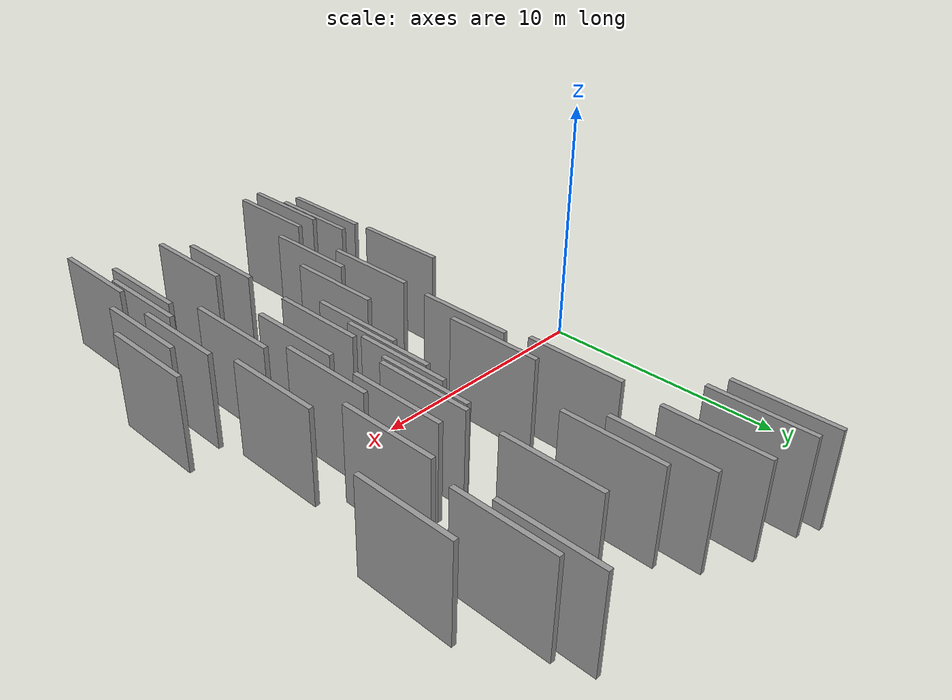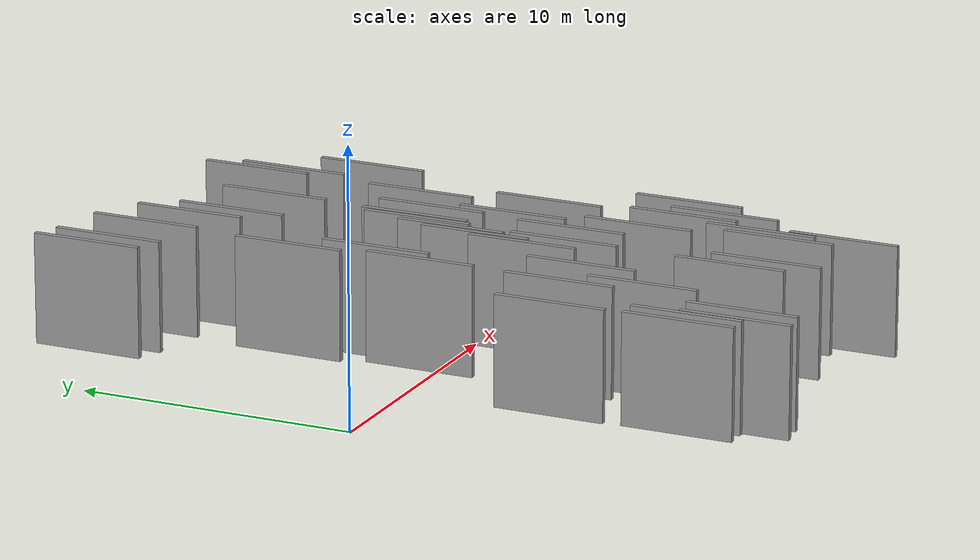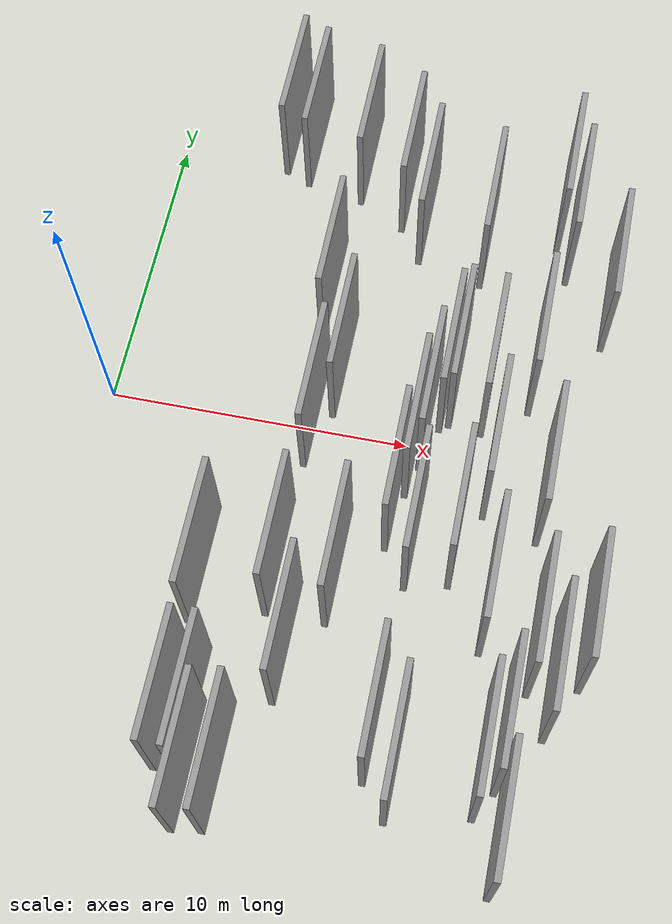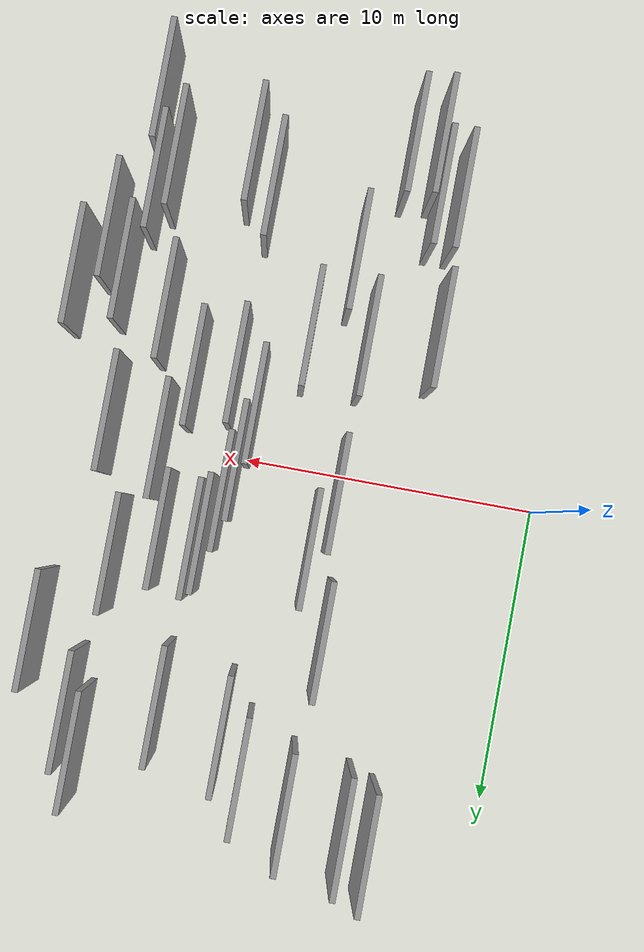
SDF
<sdf version="1.6">
 <world name="default">
  <scene>
   <sky><clouds><speed>12</speed></clouds></sky>
   <ambient>0.4 0.4 0.4 1</ambient>
   <background>0.7 0.7 0.7 1</background>
   <shadows>1</shadows>
  </scene>
  <gravity>0 0 -9.8066</gravity>
  <magnetic_field>6e-06 2.3e-05 -4.2e-05</magnetic_field>
  <physics default="0" name="default_physics" type="ode">
   <ode>
    <solver>
     <type>quick</type>
     <iters>10</iters>
     <sor>1.0</sor>
     <use_dynamic_moi_rescaling>0</use_dynamic_moi_rescaling>
    </solver>
    <constraints>
     <cfm>0</cfm>
     <erp>0.2</erp>
     <contact_max_correcting_vel>100</contact_max_correcting_vel>
     <contact_surface_layer>0.001</contact_surface_layer>
    </constraints>
   </ode>
   <max_step_size>0.004</max_step_size>
   <real_time_factor>1</real_time_factor>
   <real_time_update_rate>250</real_time_update_rate>
  </physics>
  <light name="sun" type="directional">
   <pose>0 0 10 0 0 0</pose>
   <diffuse>0.8 0.8 0.8 1</diffuse>
   <specular>0.2 0.2 0.2 1</specular>
   <attenuation>
    <range>1000</range>
    <constant>0.9</constant>
    <linear>0.01</linear>
    <quadratic>0.001</quadratic>
   </attenuation>
   <direction>-0.5 0.1 -0.9</direction>
  </light>
  <model name="grey_wall_1">
   <static>1</static>
   <pose>6.8083 0.6478 0.0 0.000000 0.000000 1.570796</pose>
   <link name="link">
    <pose>0 0 2.00 0 0 0</pose>
    <collision name="collision"><geometry><box><size>4.00 0.2 4.00</size></box></geometry></collision>
    <visual name="visual">
     <cast_shadows>0</cast_shadows>
     <geometry><box><size>4.00 0.2 4.00</size></box></geometry>
     <material>
      <script>
       <uri>model://grey_wall/materials/scripts</uri>
       <uri>model://grey_wall/materials/textures</uri>
       <name>vrc/grey_wall</name>
      </script>
     </material>
    </visual>
   </link>
  </model>
  <model name="grey_wall_2">
   <static>1</static>
   <pose>15.7567 -6.8476 0.0 0.000000 0.000000 1.570796</pose>
   <link name="link">
    <pose>0 0 2.00 0 0 0</pose>
    <collision name="collision"><geometry><box><size>4.00 0.2 4.00</size></box></geometry></collision>
    <visual name="visual">
     <cast_shadows>0</cast_shadows>
     <geometry><box><size>4.00 0.2 4.00</size></box></geometry>
     <material>
      <script>
       <uri>model://grey_wall/materials/scripts</uri>
       <uri>model://grey_wall/materials/textures</uri>
       <name>vrc/grey_wall</name>
      </script>
     </material>
    </visual>
   </link>
  </model>
  <model name="grey_wall_3">
   <static>1</static>
   <pose>14.5750 -8.6801 0.0 0.000000 0.000000 1.570796</pose>
   <link name="link">
    <pose>0 0 2.00 0 0 0</pose>
    <collision name="collision"><geometry><box><size>4.00 0.2 4.00</size></box></geometry></collision>
    <visual name="visual">
     <cast_shadows>0</cast_shadows>
     <geometry><box><size>4.00 0.2 4.00</size></box></geometry>
     <material>
      <script>
       <uri>model://grey_wall/materials/scripts</uri>
       <uri>model://grey_wall/materials/textures</uri>
       <name>vrc/grey_wall</name>
      </script>
     </material>
    </visual>
   </link>
  </model>
  <model name="grey_wall_4">
   <static>1</static>
   <pose>9.1285 9.0068 0.0 0.000000 0.000000 1.570796</pose>
   <link name="link">
    <pose>0 0 2.00 0 0 0</pose>
    <collision name="collision"><geometry><box><size>4.00 0.2 4.00</size></box></geometry></collision>
    <visual name="visual">
     <cast_shadows>0</cast_shadows>
     <geometry><box><size>4.00 0.2 4.00</size></box></geometry>
     <material>
      <script>
       <uri>model://grey_wall/materials/scripts</uri>
       <uri>model://grey_wall/materials/textures</uri>
       <name>vrc/grey_wall</name>
      </script>
     </material>
    </visual>
   </link>
  </model>
  <model name="grey_wall_5">
   <static>1</static>
   <pose>12.8604 -0.0715 0.0 0.000000 0.000000 1.570796</pose>
   <link name="link">
    <pose>0 0 2.00 0 0 0</pose>
    <collision name="collision"><geometry><box><size>4.00 0.2 4.00</size></box></geometry></collision>
    <visual name="visual">
     <cast_shadows>0</cast_shadows>
     <geometry><box><size>4.00 0.2 4.00</size></box></geometry>
     <material>
      <script>
       <uri>model://grey_wall/materials/scripts</uri>
       <uri>model://grey_wall/materials/textures</uri>
       <name>vrc/grey_wall</name>
      </script>
     </material>
    </visual>
   </link>
  </model>
  <model name="grey_wall_6">
   <static>1</static>
   <pose>11.5344 -10.1321 0.0 0.000000 0.000000 1.570796</pose>
   <link name="link">
    <pose>0 0 2.00 0 0 0</pose>
    <collision name="collision"><geometry><box><size>4.00 0.2 4.00</size></box></geometry></collision>
    <visual name="visual">
     <cast_shadows>0</cast_shadows>
     <geometry><box><size>4.00 0.2 4.00</size></box></geometry>
     <material>
      <script>
       <uri>model://grey_wall/materials/scripts</uri>
       <uri>model://grey_wall/materials/textures</uri>
       <name>vrc/grey_wall</name>
      </script>
     </material>
    </visual>
   </link>
  </model>
  <model name="grey_wall_7">
   <static>1</static>
   <pose>6.3801 -11.3812 0.0 0.000000 0.000000 1.570796</pose>
   <link name="link">
    <pose>0 0 2.00 0 0 0</pose>
    <collision name="collision"><geometry><box><size>4.00 0.2 4.00</size></box></geometry></collision>
    <visual name="visual">
     <cast_shadows>0</cast_shadows>
     <geometry><box><size>4.00 0.2 4.00</size></box></geometry>
     <material>
      <script>
       <uri>model://grey_wall/materials/scripts</uri>
       <uri>model://grey_wall/materials/textures</uri>
       <name>vrc/grey_wall</name>
      </script>
     </material>
    </visual>
   </link>
  </model>
  <model name="grey_wall_8">
   <static>1</static>
   <pose>14.8507 -11.6433 0.0 0.000000 0.000000 1.570796</pose>
   <link name="link">
    <pose>0 0 2.00 0 0 0</pose>
    <collision name="collision"><geometry><box><size>4.00 0.2 4.00</size></box></geometry></collision>
    <visual name="visual">
     <cast_shadows>0</cast_shadows>
     <geometry><box><size>4.00 0.2 4.00</size></box></geometry>
     <material>
      <script>
       <uri>model://grey_wall/materials/scripts</uri>
       <uri>model://grey_wall/materials/textures</uri>
       <name>vrc/grey_wall</name>
      </script>
     </material>
    </visual>
   </link>
  </model>
  <model name="grey_wall_9">
   <static>1</static>
   <pose>10.7058 -9.1279 0.0 0.000000 0.000000 1.570796</pose>
   <link name="link">
    <pose>0 0 2.00 0 0 0</pose>
    <collision name="collision"><geometry><box><size>4.00 0.2 4.00</size></box></geometry></collision>
    <visual name="visual">
     <cast_shadows>0</cast_shadows>
     <geometry><box><size>4.00 0.2 4.00</size></box></geometry>
     <material>
      <script>
       <uri>model://grey_wall/materials/scripts</uri>
       <uri>model://grey_wall/materials/textures</uri>
       <name>vrc/grey_wall</name>
      </script>
     </material>
    </visual>
   </link>
  </model>
  <model name="grey_wall_10">
   <static>1</static>
   <pose>11.2313 2.9331 0.0 0.000000 0.000000 1.570796</pose>
   <link name="link">
    <pose>0 0 2.00 0 0 0</pose>
    <collision name="collision"><geometry><box><size>4.00 0.2 4.00</size></box></geometry></collision>
    <visual name="visual">
     <cast_shadows>0</cast_shadows>
     <geometry><box><size>4.00 0.2 4.00</size></box></geometry>
     <material>
      <script>
       <uri>model://grey_wall/materials/scripts</uri>
       <uri>model://grey_wall/materials/textures</uri>
       <name>vrc/grey_wall</name>
      </script>
     </material>
    </visual>
   </link>
  </model>
  <model name="grey_wall_11">
   <static>1</static>
   <pose>13.4582 -4.5617 0.0 0.000000 0.000000 1.570796</pose>
   <link name="link">
    <pose>0 0 2.00 0 0 0</pose>
    <collision name="collision"><geometry><box><size>4.00 0.2 4.00</size></box></geometry></collision>
    <visual name="visual">
     <cast_shadows>0</cast_shadows>
     <geometry><box><size>4.00 0.2 4.00</size></box></geometry>
     <material>
      <script>
       <uri>model://grey_wall/materials/scripts</uri>
       <uri>model://grey_wall/materials/textures</uri>
       <name>vrc/grey_wall</name>
      </script>
     </material>
    </visual>
   </link>
  </model>
  <model name="grey_wall_12">
   <static>1</static>
   <pose>15.8311 6.7744 0.0 0.000000 0.000000 1.570796</pose>
   <link name="link">
    <pose>0 0 2.00 0 0 0</pose>
    <collision name="collision"><geometry><box><size>4.00 0.2 4.00</size></box></geometry></collision>
    <visual name="visual">
     <cast_shadows>0</cast_shadows>
     <geometry><box><size>4.00 0.2 4.00</size></box></geometry>
     <material>
      <script>
       <uri>model://grey_wall/materials/scripts</uri>
       <uri>model://grey_wall/materials/textures</uri>
       <name>vrc/grey_wall</name>
      </script>
     </material>
    </visual>
   </link>
  </model>
  <model name="grey_wall_13">
   <static>1</static>
   <pose>4.4147 -5.2535 0.0 0.000000 0.000000 1.570796</pose>
   <link name="link">
    <pose>0 0 2.00 0 0 0</pose>
    <collision name="collision"><geometry><box><size>4.00 0.2 4.00</size></box></geometry></collision>
    <visual name="visual">
     <cast_shadows>0</cast_shadows>
     <geometry><box><size>4.00 0.2 4.00</size></box></geometry>
     <material>
      <script>
       <uri>model://grey_wall/materials/scripts</uri>
       <uri>model://grey_wall/materials/textures</uri>
       <name>vrc/grey_wall</name>
      </script>
     </material>
    </visual>
   </link>
  </model>
  <model name="grey_wall_14">
   <static>1</static>
   <pose>14.0575 -9.5453 0.0 0.000000 0.000000 1.570796</pose>
   <link name="link">
    <pose>0 0 2.00 0 0 0</pose>
    <collision name="collision"><geometry><box><size>4.00 0.2 4.00</size></box></geometry></collision>
    <visual name="visual">
     <cast_shadows>0</cast_shadows>
     <geometry><box><size>4.00 0.2 4.00</size></box></geometry>
     <material>
      <script>
       <uri>model://grey_wall/materials/scripts</uri>
       <uri>model://grey_wall/materials/textures</uri>
       <name>vrc/grey_wall</name>
      </script>
     </material>
    </visual>
   </link>
  </model>
  <model name="grey_wall_15">
   <static>1</static>
   <pose>13.7512 3.8893 0.0 0.000000 0.000000 1.570796</pose>
   <link name="link">
    <pose>0 0 2.00 0 0 0</pose>
    <collision name="collision"><geometry><box><size>4.00 0.2 4.00</size></box></geometry></collision>
    <visual name="visual">
     <cast_shadows>0</cast_shadows>
     <geometry><box><size>4.00 0.2 4.00</size></box></geometry>
     <material>
      <script>
       <uri>model://grey_wall/materials/scripts</uri>
       <uri>model://grey_wall/materials/textures</uri>
       <name>vrc/grey_wall</name>
      </script>
     </material>
    </visual>
   </link>
  </model>
  <model name="grey_wall_16">
   <static>1</static>
   <pose>13.8234 10.3676 0.0 0.000000 0.000000 1.570796</pose>
   <link name="link">
    <pose>0 0 2.00 0 0 0</pose>
    <collision name="collision"><geometry><box><size>4.00 0.2 4.00</size></box></geometry></collision>
    <visual name="visual">
     <cast_shadows>0</cast_shadows>
     <geometry><box><size>4.00 0.2 4.00</size></box></geometry>
     <material>
      <script>
       <uri>model://grey_wall/materials/scripts</uri>
       <uri>model://grey_wall/materials/textures</uri>
       <name>vrc/grey_wall</name>
      </script>
     </material>
    </visual>
   </link>
  </model>
  <model name="grey_wall_17">
   <static>1</static>
   <pose>5.4764 -11.5099 0.0 0.000000 0.000000 1.570796</pose>
   <link name="link">
    <pose>0 0 2.00 0 0 0</pose>
    <collision name="collision"><geometry><box><size>4.00 0.2 4.00</size></box></geometry></collision>
    <visual name="visual">
     <cast_shadows>0</cast_shadows>
     <geometry><box><size>4.00 0.2 4.00</size></box></geometry>
     <material>
      <script>
       <uri>model://grey_wall/materials/scripts</uri>
       <uri>model://grey_wall/materials/textures</uri>
       <name>vrc/grey_wall</name>
      </script>
     </material>
    </visual>
   </link>
  </model>
  <model name="grey_wall_18">
   <static>1</static>
   <pose>14.6709 -0.6434 0.0 0.000000 0.000000 1.570796</pose>
   <link name="link">
    <pose>0 0 2.00 0 0 0</pose>
    <collision name="collision"><geometry><box><size>4.00 0.2 4.00</size></box></geometry></collision>
    <visual name="visual">
     <cast_shadows>0</cast_shadows>
     <geometry><box><size>4.00 0.2 4.00</size></box></geometry>
     <material>
      <script>
       <uri>model://grey_wall/materials/scripts</uri>
       <uri>model://grey_wall/materials/textures</uri>
       <name>vrc/grey_wall</name>
      </script>
     </material>
    </visual>
   </link>
  </model>
  <model name="grey_wall_19">
   <static>1</static>
   <pose>4.5210 -9.8627 0.0 0.000000 0.000000 1.570796</pose>
   <link name="link">
    <pose>0 0 2.00 0 0 0</pose>
    <collision name="collision"><geometry><box><size>4.00 0.2 4.00</size></box></geometry></collision>
    <visual name="visual">
     <cast_shadows>0</cast_shadows>
     <geometry><box><size>4.00 0.2 4.00</size></box></geometry>
     <material>
      <script>
       <uri>model://grey_wall/materials/scripts</uri>
       <uri>model://grey_wall/materials/textures</uri>
       <name>vrc/grey_wall</name>
      </script>
     </material>
    </visual>
   </link>
  </model>
  <model name="grey_wall_20">
   <static>1</static>
   <pose>16.6151 -5.1359 0.0 0.000000 0.000000 1.570796</pose>
   <link name="link">
    <pose>0 0 2.00 0 0 0</pose>
    <collision name="collision"><geometry><box><size>4.00 0.2 4.00</size></box></geometry></collision>
    <visual name="visual">
     <cast_shadows>0</cast_shadows>
     <geometry><box><size>4.00 0.2 4.00</size></box></geometry>
     <material>
      <script>
       <uri>model://grey_wall/materials/scripts</uri>
       <uri>model://grey_wall/materials/textures</uri>
       <name>vrc/grey_wall</name>
      </script>
     </material>
    </visual>
   </link>
  </model>
  <model name="grey_wall_21">
   <static>1</static>
   <pose>11.3863 8.4530 0.0 0.000000 0.000000 1.570796</pose>
   <link name="link">
    <pose>0 0 2.00 0 0 0</pose>
    <collision name="collision"><geometry><box><size>4.00 0.2 4.00</size></box></geometry></collision>
    <visual name="visual">
     <cast_shadows>0</cast_shadows>
     <geometry><box><size>4.00 0.2 4.00</size></box></geometry>
     <material>
      <script>
       <uri>model://grey_wall/materials/scripts</uri>
       <uri>model://grey_wall/materials/textures</uri>
       <name>vrc/grey_wall</name>
      </script>
     </material>
    </visual>
   </link>
  </model>
  <model name="grey_wall_22">
   <static>1</static>
   <pose>6.4270 5.4520 0.0 0.000000 0.000000 1.570796</pose>
   <link name="link">
    <pose>0 0 2.00 0 0 0</pose>
    <collision name="collision"><geometry><box><size>4.00 0.2 4.00</size></box></geometry></collision>
    <visual name="visual">
     <cast_shadows>0</cast_shadows>
     <geometry><box><size>4.00 0.2 4.00</size></box></geometry>
     <material>
      <script>
       <uri>model://grey_wall/materials/scripts</uri>
       <uri>model://grey_wall/materials/textures</uri>
       <name>vrc/grey_wall</name>
      </script>
     </material>
    </visual>
   </link>
  </model>
  <model name="grey_wall_23">
   <static>1</static>
   <pose>8.6111 -4.5456 0.0 0.000000 0.000000 1.570796</pose>
   <link name="link">
    <pose>0 0 2.00 0 0 0</pose>
    <collision name="collision"><geometry><box><size>4.00 0.2 4.00</size></box></geometry></collision>
    <visual name="visual">
     <cast_shadows>0</cast_shadows>
     <geometry><box><size>4.00 0.2 4.00</size></box></geometry>
     <material>
      <script>
       <uri>model://grey_wall/materials/scripts</uri>
       <uri>model://grey_wall/materials/textures</uri>
       <name>vrc/grey_wall</name>
      </script>
     </material>
    </visual>
   </link>
  </model>
  <model name="grey_wall_24">
   <static>1</static>
   <pose>12.1532 -2.5962 0.0 0.000000 0.000000 1.570796</pose>
   <link name="link">
    <pose>0 0 2.00 0 0 0</pose>
    <collision name="collision"><geometry><box><size>4.00 0.2 4.00</size></box></geometry></collision>
    <visual name="visual">
     <cast_shadows>0</cast_shadows>
     <geometry><box><size>4.00 0.2 4.00</size></box></geometry>
     <material>
      <script>
       <uri>model://grey_wall/materials/scripts</uri>
       <uri>model://grey_wall/materials/textures</uri>
       <name>vrc/grey_wall</name>
      </script>
     </material>
    </visual>
   </link>
  </model>
  <model name="grey_wall_25">
   <static>1</static>
   <pose>4.6707 11.4849 0.0 0.000000 0.000000 1.570796</pose>
   <link name="link">
    <pose>0 0 2.00 0 0 0</pose>
    <collision name="collision"><geometry><box><size>4.00 0.2 4.00</size></box></geometry></collision>
    <visual name="visual">
     <cast_shadows>0</cast_shadows>
     <geometry><box><size>4.00 0.2 4.00</size></box></geometry>
     <material>
      <script>
       <uri>model://grey_wall/materials/scripts</uri>
       <uri>model://grey_wall/materials/textures</uri>
       <name>vrc/grey_wall</name>
      </script>
     </material>
    </visual>
   </link>
  </model>
  <model name="grey_wall_26">
   <static>1</static>
   <pose>10.2555 0.1864 0.0 0.000000 0.000000 1.570796</pose>
   <link name="link">
    <pose>0 0 2.00 0 0 0</pose>
    <collision name="collision"><geometry><box><size>4.00 0.2 4.00</size></box></geometry></collision>
    <visual name="visual">
     <cast_shadows>0</cast_shadows>
     <geometry><box><size>4.00 0.2 4.00</size></box></geometry>
     <material>
      <script>
       <uri>model://grey_wall/materials/scripts</uri>
       <uri>model://grey_wall/materials/textures</uri>
       <name>vrc/grey_wall</name>
      </script>
     </material>
    </visual>
   </link>
  </model>
  <model name="grey_wall_27">
   <static>1</static>
   <pose>7.5503 -7.2655 0.0 0.000000 0.000000 1.570796</pose>
   <link name="link">
    <pose>0 0 2.00 0 0 0</pose>
    <collision name="collision"><geometry><box><size>4.00 0.2 4.00</size></box></geometry></collision>
    <visual name="visual">
     <cast_shadows>0</cast_shadows>
     <geometry><box><size>4.00 0.2 4.00</size></box></geometry>
     <material>
      <script>
       <uri>model://grey_wall/materials/scripts</uri>
       <uri>model://grey_wall/materials/textures</uri>
       <name>vrc/grey_wall</name>
      </script>
     </material>
    </visual>
   </link>
  </model>
  <model name="grey_wall_28">
   <static>1</static>
   <pose>15.0805 -5.5712 0.0 0.000000 0.000000 1.570796</pose>
   <link name="link">
    <pose>0 0 2.00 0 0 0</pose>
    <collision name="collision"><geometry><box><size>4.00 0.2 4.00</size></box></geometry></collision>
    <visual name="visual">
     <cast_shadows>0</cast_shadows>
     <geometry><box><size>4.00 0.2 4.00</size></box></geometry>
     <material>
      <script>
       <uri>model://grey_wall/materials/scripts</uri>
       <uri>model://grey_wall/materials/textures</uri>
       <name>vrc/grey_wall</name>
      </script>
     </material>
    </visual>
   </link>
  </model>
  <model name="grey_wall_29">
   <static>1</static>
   <pose>10.5415 1.2352 0.0 0.000000 0.000000 1.570796</pose>
   <link name="link">
    <pose>0 0 2.00 0 0 0</pose>
    <collision name="collision"><geometry><box><size>4.00 0.2 4.00</size></box></geometry></collision>
    <visual name="visual">
     <cast_shadows>0</cast_shadows>
     <geometry><box><size>4.00 0.2 4.00</size></box></geometry>
     <material>
      <script>
       <uri>model://grey_wall/materials/scripts</uri>
       <uri>model://grey_wall/materials/textures</uri>
       <name>vrc/grey_wall</name>
      </script>
     </material>
    </visual>
   </link>
  </model>
  <model name="grey_wall_30">
   <static>1</static>
   <pose>6.7200 -4.5602 0.0 0.000000 0.000000 1.570796</pose>
   <link name="link">
    <pose>0 0 2.00 0 0 0</pose>
    <collision name="collision"><geometry><box><size>4.00 0.2 4.00</size></box></geometry></collision>
    <visual name="visual">
     <cast_shadows>0</cast_shadows>
     <geometry><box><size>4.00 0.2 4.00</size></box></geometry>
     <material>
      <script>
       <uri>model://grey_wall/materials/scripts</uri>
       <uri>model://grey_wall/materials/textures</uri>
       <name>vrc/grey_wall</name>
      </script>
     </material>
    </visual>
   </link>
  </model>
  <model name="grey_wall_31">
   <static>1</static>
   <pose>10.8022 -2.9235 0.0 0.000000 0.000000 1.570796</pose>
   <link name="link">
    <pose>0 0 2.00 0 0 0</pose>
    <collision name="collision"><geometry><box><size>4.00 0.2 4.00</size></box></geometry></collision>
    <visual name="visual">
     <cast_shadows>0</cast_shadows>
     <geometry><box><size>4.00 0.2 4.00</size></box></geometry>
     <material>
      <script>
       <uri>model://grey_wall/materials/scripts</uri>
       <uri>model://grey_wall/materials/textures</uri>
       <name>vrc/grey_wall</name>
      </script>
     </material>
    </visual>
   </link>
  </model>
  <model name="grey_wall_32">
   <static>1</static>
   <pose>6.6581 11.0757 0.0 0.000000 0.000000 1.570796</pose>
   <link name="link">
    <pose>0 0 2.00 0 0 0</pose>
    <collision name="collision"><geometry><box><size>4.00 0.2 4.00</size></box></geometry></collision>
    <visual name="visual">
     <cast_shadows>0</cast_shadows>
     <geometry><box><size>4.00 0.2 4.00</size></box></geometry>
     <material>
      <script>
       <uri>model://grey_wall/materials/scripts</uri>
       <uri>model://grey_wall/materials/textures</uri>
       <name>vrc/grey_wall</name>
      </script>
     </material>
    </visual>
   </link>
  </model>
  <model name="grey_wall_33">
   <static>1</static>
   <pose>9.9661 -1.7335 0.0 0.000000 0.000000 1.570796</pose>
   <link name="link">
    <pose>0 0 2.00 0 0 0</pose>
    <collision name="collision"><geometry><box><size>4.00 0.2 4.00</size></box></geometry></collision>
    <visual name="visual">
     <cast_shadows>0</cast_shadows>
     <geometry><box><size>4.00 0.2 4.00</size></box></geometry>
     <material>
      <script>
       <uri>model://grey_wall/materials/scripts</uri>
       <uri>model://grey_wall/materials/textures</uri>
       <name>vrc/grey_wall</name>
      </script>
     </material>
    </visual>
   </link>
  </model>
  <model name="grey_wall_34">
   <static>1</static>
   <pose>10.9491 2.7129 0.0 0.000000 0.000000 1.570796</pose>
   <link name="link">
    <pose>0 0 2.00 0 0 0</pose>
    <collision name="collision"><geometry><box><size>4.00 0.2 4.00</size></box></geometry></collision>
    <visual name="visual">
     <cast_shadows>0</cast_shadows>
     <geometry><box><size>4.00 0.2 4.00</size></box></geometry>
     <material>
      <script>
       <uri>model://grey_wall/materials/scripts</uri>
       <uri>model://grey_wall/materials/textures</uri>
       <name>vrc/grey_wall</name>
      </script>
     </material>
    </visual>
   </link>
  </model>
  <model name="grey_wall_35">
   <static>1</static>
   <pose>14.2979 9.1388 0.0 0.000000 0.000000 1.570796</pose>
   <link name="link">
    <pose>0 0 2.00 0 0 0</pose>
    <collision name="collision"><geometry><box><size>4.00 0.2 4.00</size></box></geometry></collision>
    <visual name="visual">
     <cast_shadows>0</cast_shadows>
     <geometry><box><size>4.00 0.2 4.00</size></box></geometry>
     <material>
      <script>
       <uri>model://grey_wall/materials/scripts</uri>
       <uri>model://grey_wall/materials/textures</uri>
       <name>vrc/grey_wall</name>
      </script>
     </material>
    </visual>
   </link>
  </model>
  <model name="grey_wall_36">
   <static>1</static>
   <pose>5.2397 -9.8598 0.0 0.000000 0.000000 1.570796</pose>
   <link name="link">
    <pose>0 0 2.00 0 0 0</pose>
    <collision name="collision"><geometry><box><size>4.00 0.2 4.00</size></box></geometry></collision>
    <visual name="visual">
     <cast_shadows>0</cast_shadows>
     <geometry><box><size>4.00 0.2 4.00</size></box></geometry>
     <material>
      <script>
       <uri>model://grey_wall/materials/scripts</uri>
       <uri>model://grey_wall/materials/textures</uri>
       <name>vrc/grey_wall</name>
      </script>
     </material>
    </visual>
   </link>
  </model>
  <model name="grey_wall_37">
   <static>1</static>
   <pose>7.3839 2.5765 0.0 0.000000 0.000000 1.570796</pose>
   <link name="link">
    <pose>0 0 2.00 0 0 0</pose>
    <collision name="collision"><geometry><box><size>4.00 0.2 4.00</size></box></geometry></collision>
    <visual name="visual">
     <cast_shadows>0</cast_shadows>
     <geometry><box><size>4.00 0.2 4.00</size></box></geometry>
     <material>
      <script>
       <uri>model://grey_wall/materials/scripts</uri>
       <uri>model://grey_wall/materials/textures</uri>
       <name>vrc/grey_wall</name>
      </script>
     </material>
    </visual>
   </link>
  </model>
  <model name="grey_wall_38">
   <static>1</static>
   <pose>8.3023 10.2130 0.0 0.000000 0.000000 1.570796</pose>
   <link name="link">
    <pose>0 0 2.00 0 0 0</pose>
    <collision name="collision"><geometry><box><size>4.00 0.2 4.00</size></box></geometry></collision>
    <visual name="visual">
     <cast_shadows>0</cast_shadows>
     <geometry><box><size>4.00 0.2 4.00</size></box></geometry>
     <material>
      <script>
       <uri>model://grey_wall/materials/scripts</uri>
       <uri>model://grey_wall/materials/textures</uri>
       <name>vrc/grey_wall</name>
      </script>
     </material>
    </visual>
   </link>
  </model>
  <model name="grey_wall_39">
   <static>1</static>
   <pose>3.7982 11.8564 0.0 0.000000 0.000000 1.570796</pose>
   <link name="link">
    <pose>0 0 2.00 0 0 0</pose>
    <collision name="collision"><geometry><box><size>4.00 0.2 4.00</size></box></geometry></collision>
    <visual name="visual">
     <cast_shadows>0</cast_shadows>
     <geometry><box><size>4.00 0.2 4.00</size></box></geometry>
     <material>
      <script>
       <uri>model://grey_wall/materials/scripts</uri>
       <uri>model://grey_wall/materials/textures</uri>
       <name>vrc/grey_wall</name>
      </script>
     </material>
    </visual>
   </link>
  </model>
  <model name="grey_wall_40">
   <static>1</static>
   <pose>12.3374 2.8116 0.0 0.000000 0.000000 1.570796</pose>
   <link name="link">
    <pose>0 0 2.00 0 0 0</pose>
    <collision name="collision"><geometry><box><size>4.00 0.2 4.00</size></box></geometry></collision>
    <visual name="visual">
     <cast_shadows>0</cast_shadows>
     <geometry><box><size>4.00 0.2 4.00</size></box></geometry>
     <material>
      <script>
       <uri>model://grey_wall/materials/scripts</uri>
       <uri>model://grey_wall/materials/textures</uri>
       <name>vrc/grey_wall</name>
      </script>
     </material>
    </visual>
   </link>
  </model>
 </world>
</sdf>
